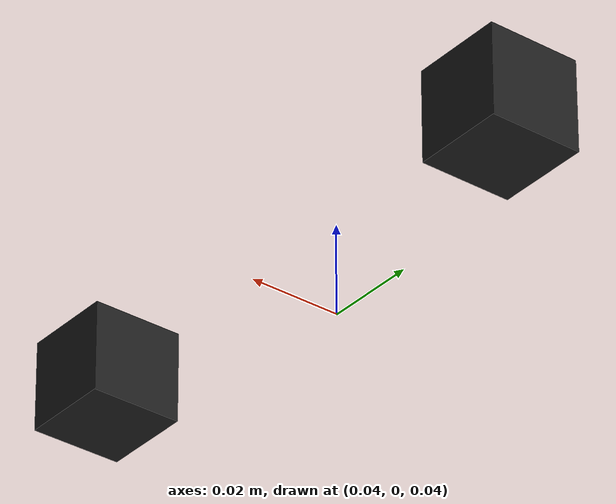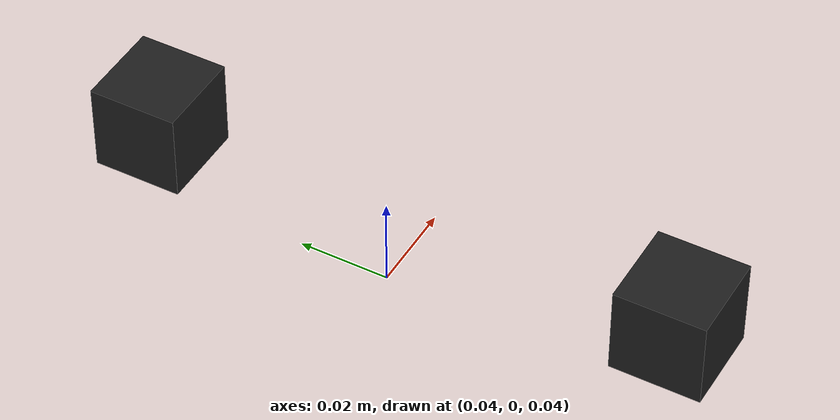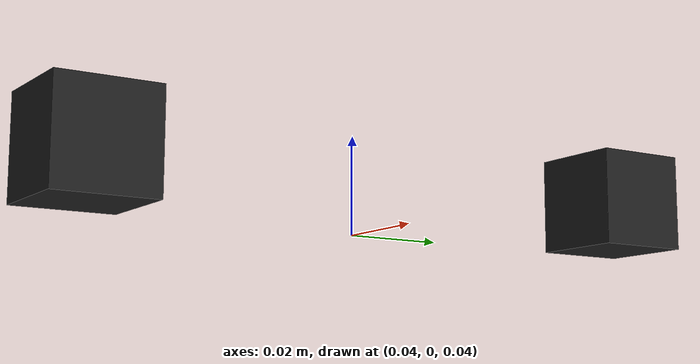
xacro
<?xml version="1.0"?>
<robot xmlns:xacro="http://www.ros.org/wiki/xacro" name="test_dual_camera">

  <!-- Root link (world/odom frame) -->
  <link name="odom" />

  <!-- Base link: main platform, fixed to odom -->
  <link name="base_link" />

  <joint name="odom_to_base_link" type="fixed">
    <parent link="odom" />
    <child link="base_link" />
    <origin xyz="0.0 0.0 0.0" rpy="0 0 0" />
  </joint>

  <!-- Gimbal link: movable platform for future auto-aim camera -->
  <link name="gimbal_link" />

  <joint name="gimbal_joint" type="floating">
    <parent link="odom" />
    <child link="gimbal_link" />
  </joint>

  <!-- Left camera mount -->
  <link name="camera_left_link" />
  <joint name="camera_left_joint" type="fixed">
    <parent link="base_link" />
    <child link="camera_left_link" />
    <!-- place left camera slightly left and up -->
    <origin xyz="0.05 0.06 0.05" rpy="0 0 0" />
  </joint>

  <!-- Right camera mount -->
  <link name="camera_right_link" />
  <joint name="camera_right_joint" type="fixed">
    <parent link="base_link" />
    <child link="camera_right_link" />
    <!-- place right camera slightly right and up -->
    <origin xyz="0.05 -0.06 0.05" rpy="0 0 0" />
  </joint>

  <!-- Optical frames (camera optical frames expected by many drivers/consumers) -->
  <link name="camera_left_optical_frame" />
  <joint name="camera_left_opt_joint" type="fixed">
    <parent link="camera_left_link" />
    <child link="camera_left_optical_frame" />
    <origin xyz="0 0 0" rpy="0 0 0" />
  </joint>

  <link name="camera_right_optical_frame" />
  <joint name="camera_right_opt_joint" type="fixed">
    <parent link="camera_right_link" />
    <child link="camera_right_optical_frame" />
    <origin xyz="0 0 0" rpy="0 0 0" />
  </joint>

  <!-- Simple camera sensor description as visual only to ease RViz testing -->
  <link name="camera_left_visual">
    <visual>
      <origin xyz="0 0 0" rpy="0 0 0" />
      <geometry>
        <box size="0.02 0.02 0.02" />
      </geometry>
      <material name="black" />
    </visual>
  </link>

  <joint name="camera_left_visual_joint" type="fixed">
    <parent link="camera_left_optical_frame" />
    <child link="camera_left_visual" />
    <origin xyz="0 0 0" rpy="0 0 0" />
  </joint>

  <link name="camera_right_visual">
    <visual>
      <origin xyz="0 0 0" rpy="0 0 0" />
      <geometry>
        <box size="0.02 0.02 0.02" />
      </geometry>
      <material name="black" />
    </visual>
  </link>

  <joint name="camera_right_visual_joint" type="fixed">
    <parent link="camera_right_optical_frame" />
    <child link="camera_right_visual" />
    <origin xyz="0 0 0" rpy="0 0 0" />
  </joint>

</robot>
